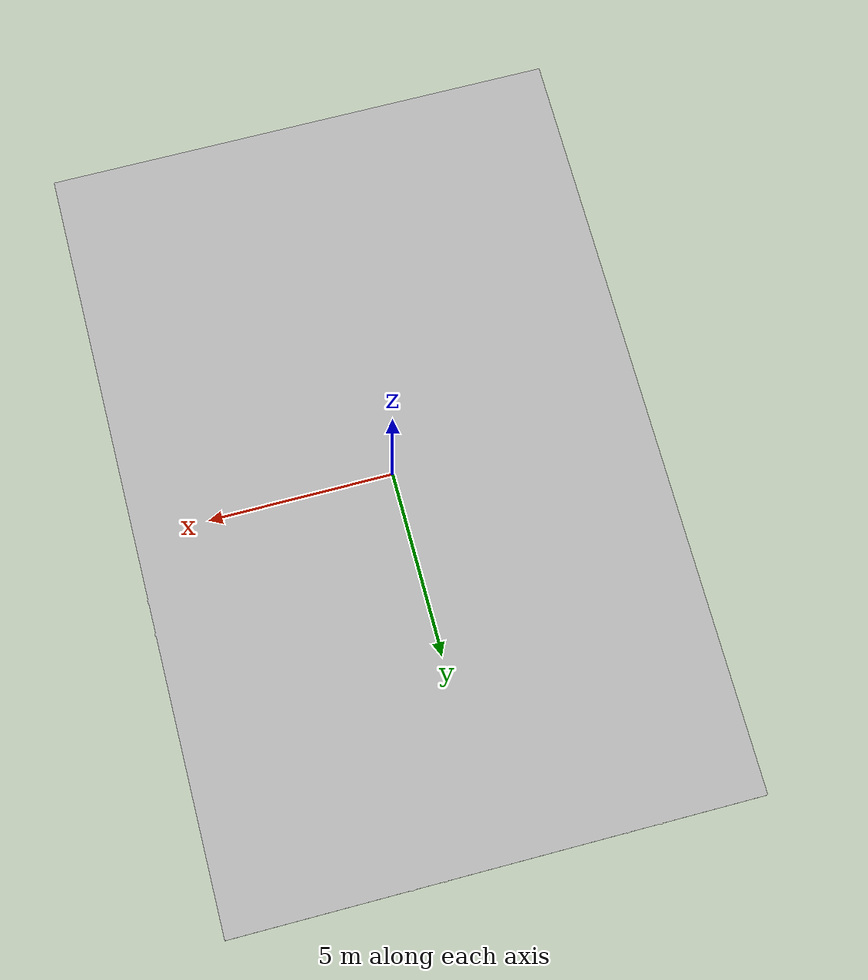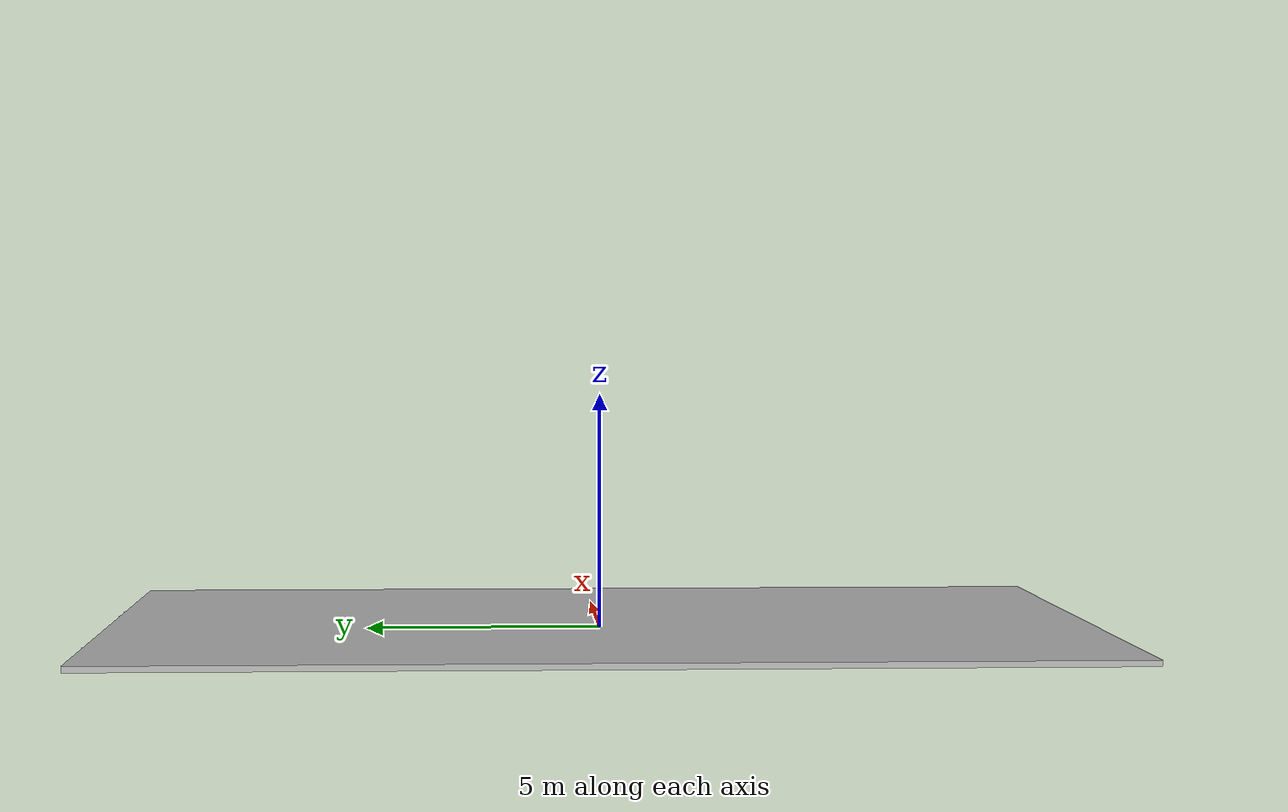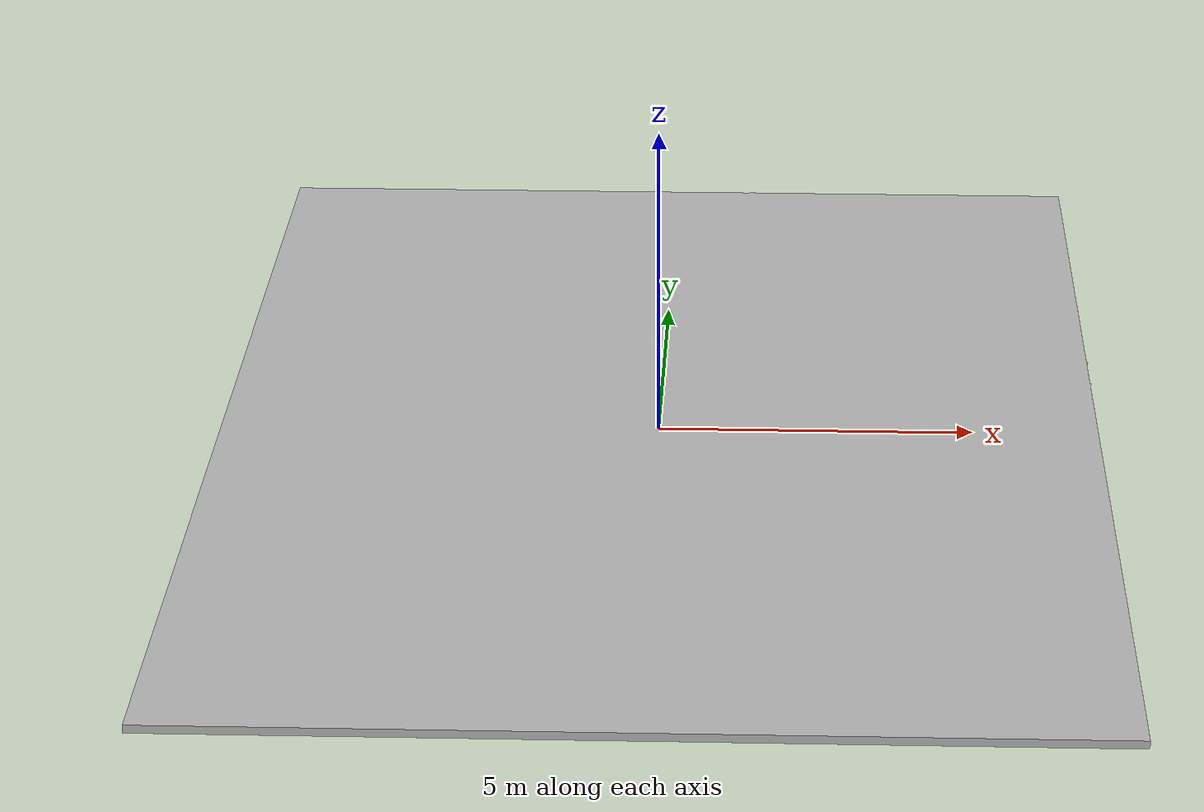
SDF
<?xml version="1.0" ?>
<sdf version="1.6">
  <model name="aws_robomaker_warehouse_GroundB_01">
    <link name="link">
      <inertial>
        <mass>1000</mass>
        <inertia>
          <ixx>1200083.33</ixx>
          <ixy>0</ixy>
          <ixz>0</ixz>
          <iyy>8333416.66</iyy>
          <iyz>0</iyz>
          <izz>2033333.33</izz>
        </inertia>
      </inertial>
      <collision name="collision">
        <geometry>
          <mesh>
            <uri>model://aws_robomaker_warehouse_GroundB_01/meshes/aws_robomaker_warehouse_GroundB_01_collision.DAE</uri>
            <scale>1 1 1</scale>
          </mesh>
        </geometry>
        <surface>
          <friction>
            <ode>
              <mu>100</mu>
              <mu2>50</mu2>
              <fdir1>0 0 0</fdir1>
              <slip1>0</slip1>
              <slip2>0</slip2>
            </ode>
          </friction>
        </surface>
      </collision>
      <visual name="visual">
        <geometry>
          <mesh>
            <uri>model://aws_robomaker_warehouse_GroundB_01/meshes/aws_robomaker_warehouse_GroundB_01_visual.DAE</uri>
            <scale>1 1 1</scale>
          </mesh>
        </geometry>
        <meta><layer>1</layer></meta>
      </visual>
    </link>
    <static>1</static>
  </model>
</sdf>
